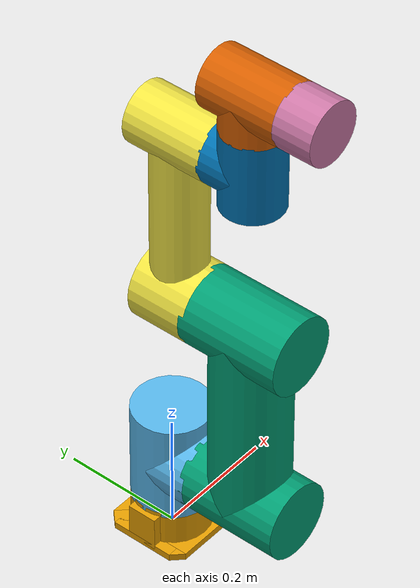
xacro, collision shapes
<?xml version="1.0"?>
<robot xmlns:xacro="http://www.ros.org/wiki/xacro" name="tm7sx">

  <xacro:arg name="ns" default="" />
  <xacro:arg name="prefix" default="" />
  <xacro:arg name="trans_hw_iface" default="hardware_interface/PositionJointInterface" />

  <xacro:include filename="$(find tm_description)/xacro/macro.gazebo.xacro" />
  <xacro:include filename="$(find tm_description)/xacro/macro.transmission.xacro" />

  <!-- tm7sx -->
  <!-- If the user want to use newly generated named robot description file as user_defined.urdf.xacro, -->
  <!-- you must modify 'macro.tm7sx-nominal.urdf.xacro' to 'user_defined.urdf.xacro'  -->
  <xacro:include filename="$(find tm_description)/xacro/macro.tm7sx-nominal.urdf.xacro" />

  <xacro:tmr_gazebo ns="$(arg ns)" prefix="$(arg prefix)" />
  <xacro:tmr_transmission prefix="$(arg prefix)" hw_iface="$(arg trans_hw_iface)" />

  <!-- Arm -->
  <xacro:tm7sx ns="$(arg ns)" prefix="$(arg prefix)"/>

</robot>

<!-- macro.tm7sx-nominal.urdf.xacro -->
<robot xmlns:xacro="http://www.ros.org/wiki/xacro">

  <xacro:include filename="$(find tm_description)/xacro/macro.inertial.xacro" />

  <xacro:macro name="tm7sx" params="ns prefix
    joint_1_lower_limit:=${radians(-360)}    joint_1_upper_limit:=${radians(360)}
    joint_2_lower_limit:=${radians(-360)}    joint_2_upper_limit:=${radians(360)}
    joint_3_lower_limit:=${radians(-152)}    joint_3_upper_limit:=${radians(152)}
    joint_4_lower_limit:=${radians(-360)}    joint_4_upper_limit:=${radians(360)}
    joint_5_lower_limit:=${radians(-360)}    joint_5_upper_limit:=${radians(360)}
    joint_6_lower_limit:=${radians(-360)}    joint_6_upper_limit:=${radians(360)}
    joint_1_velocity_limit:=${radians(210)}
    joint_2_velocity_limit:=${radians(210)}
    joint_3_velocity_limit:=${radians(210)}
    joint_4_velocity_limit:=${radians(225)}
    joint_5_velocity_limit:=${radians(225)}
    joint_6_velocity_limit:=${radians(450)}
    joint_1_effort_limit:=${157}
    joint_2_effort_limit:=${157}
    joint_3_effort_limit:=${157}
    joint_4_effort_limit:=${54}
    joint_5_effort_limit:=${54}
    joint_6_effort_limit:=${34}
    safety_limits:=false safety_pos_margin:=0.15
    safety_k_position:=20">

    <xacro:property name="damping_factor" value="0.000"/>
    <xacro:property name="d1" value="${damping_factor*0.1}"/>
    <xacro:property name="d2" value="${damping_factor*0.1}"/>
    <xacro:property name="d3" value="${damping_factor*0.1}"/>
    <xacro:property name="d4" value="${damping_factor*0.1}"/>
    <xacro:property name="d5" value="${damping_factor*0.1}"/>
    <xacro:property name="d6" value="${damping_factor*0.1}"/>

    <xacro:property name="friction_factor" value="0.000"/>
    <xacro:property name="f1" value="${friction_factor*0.1}"/>
    <xacro:property name="f2" value="${friction_factor*0.1}"/>
    <xacro:property name="f3" value="${friction_factor*0.1}"/>
    <xacro:property name="f4" value="${friction_factor*0.1}"/>
    <xacro:property name="f5" value="${friction_factor*0.1}"/>
    <xacro:property name="f6" value="${friction_factor*0.1}"/>

    <!-- Inertia parameters -->
    <xacro:property name="mass_0" value="1.0" />
    <xacro:property name="mass_1" value="4.320" />
    <xacro:property name="mass_2" value="9.456" />
    <xacro:property name="mass_3" value="2.618" />
    <xacro:property name="mass_4" value="1.770" />
    <xacro:property name="mass_5" value="1.770" />
    <xacro:property name="mass_6" value="0.340" />

    <xacro:property name="unit_factor" value="0.000001"/>
    <xacro:property name="ixx_1" value="${8439.2993*unit_factor}" />
    <xacro:property name="ixx_2" value="${28756.423*unit_factor}" />
    <xacro:property name="ixx_3" value="${4027.8840*unit_factor}" />
    <xacro:property name="ixx_4" value="${2046.0318*unit_factor}" />
    <xacro:property name="ixx_5" value="${2046.0318*unit_factor}" />
    <xacro:property name="ixx_6" value="${250.85804*unit_factor}" />

    <xacro:property name="iyy_1" value="${13793.964*unit_factor}" />
    <xacro:property name="iyy_2" value="${240700.11*unit_factor}" />
    <xacro:property name="iyy_3" value="${35507.262*unit_factor}" />
    <xacro:property name="iyy_4" value="${3171.8293*unit_factor}" />
    <xacro:property name="iyy_5" value="${3171.8293*unit_factor}" />
    <xacro:property name="iyy_6" value="${252.81701*unit_factor}" />

    <xacro:property name="izz_1" value="${14241.226*unit_factor}" />
    <xacro:property name="izz_2" value="${252296.10*unit_factor}" />
    <xacro:property name="izz_3" value="${36908.834*unit_factor}" />
    <xacro:property name="izz_4" value="${3478.9518*unit_factor}" />
    <xacro:property name="izz_5" value="${3478.9518*unit_factor}" />
    <xacro:property name="izz_6" value="${312.21304*unit_factor}" />

<!--LinkDescription-->
  <link name="${prefix}link_0">
    <visual>
      <geometry>
        <mesh filename="package://tm_description/meshes/tm7s/visual/tm7s-base.obj" />
      </geometry>
    </visual>
    <collision>
      <geometry>
        <cylinder radius="0.0635" length="0.072"/>
      </geometry>
      <origin rpy="0 0 0" xyz="0 0 0.036" />
    </collision>
    <collision>
      <geometry>
        <box size="0.02 0.05 0.065"/>
      </geometry>
      <origin rpy="0 0 0" xyz="-0.0615 0 0.0325" />
    </collision>
    <collision>
      <geometry>
        <box size="0.177 0.025 0.012"/>
      </geometry>
      <origin rpy="0 0 ${radians(45)}" xyz="0 0 0.006" />
    </collision>
    <collision>
      <geometry>
        <box size="0.177 0.025 0.012"/>
      </geometry>
      <origin rpy="0 0 ${radians(-45)}" xyz="0 0 0.006" />
    </collision>
    <collision>
      <geometry>
        <box size="0.143 0.1075 0.012"/>
      </geometry>
      <origin rpy="0 0 0" xyz="0 0 0.006" />
    </collision>
    <collision>
      <geometry>
        <box size="0.1075 0.143 0.012"/>
      </geometry>
      <origin rpy="0 0 0" xyz="0 0 0.006" />
    </collision>
<!--inertial-->
    <xacro:cylinder_inertial_z radius="0.06" length="0.05" mass="${mass_0}">
      <origin rpy="0.000000 0.000000 0.000000" xyz="0.000000 0.000000 0.000000" />
    </xacro:cylinder_inertial_z>
  </link>
  <joint name="${prefix}joint_1" type="revolute">
    <parent link="${prefix}link_0" />
    <child link="${prefix}link_1" />
    <origin rpy="0.000000 -0.000000 0.000000" xyz="0.000000 0.000000 0.148400" />
    <axis xyz="0 0 1" />
<!--limit-->
    <limit lower="${joint_1_lower_limit}" upper="${joint_1_upper_limit}" velocity="${joint_1_velocity_limit}" effort="${joint_1_effort_limit}" />
    <xacro:if value="${safety_limits}">
      <safety_controller soft_lower_limit="${joint_1_lower_limit + safety_pos_margin}" soft_upper_limit="${joint_1_upper_limit - safety_pos_margin}" k_position="${safety_k_position}" k_velocity="0.0" />
    </xacro:if>
    <dynamics damping="${d1}" friction="${f1}" />
  </joint>
  <link name="${prefix}link_1">
    <visual>
      <geometry>
        <mesh filename="package://tm_description/meshes/tm7s/visual/tm7s-j1.obj" />
      </geometry>
    </visual>
    <collision>
      <geometry>
        <cylinder radius="0.0635" length="0.17475"/>
      </geometry>
      <origin rpy="0 0 0" xyz="0 0 0.00275" />
    </collision>
    <collision>
      <geometry>
        <cylinder radius="0.0635" length="0.07"/>
      </geometry>
      <origin rpy="${radians(90)} 0 0" xyz="0 -0.037 0" />
    </collision>
    <inertial>
      <origin rpy="0.000000 0.000000 0.000000" xyz="0.000000 0.000000 0.000000" />
      <mass value="${mass_1}" />
      <inertia ixx="${ixx_1}" ixy="0.000000" ixz="0.000000" iyy="${iyy_1}" iyz="0.000000" izz="${izz_1}" />
    </inertial>
  </link>
  <joint name="${prefix}joint_2" type="revolute">
    <parent link="${prefix}link_1" />
    <child link="${prefix}link_2" />
    <origin rpy="-1.570796 -1.570796 0.000000" xyz="0.000000 0.000000 0.000000" />
    <axis xyz="0 0 1" />
<!--limit-->
    <limit lower="${joint_2_lower_limit}" upper="${joint_2_upper_limit}" velocity="${joint_2_velocity_limit}" effort="${joint_2_effort_limit}" />
    <xacro:if value="${safety_limits}">
      <safety_controller soft_lower_limit="${joint_2_lower_limit + safety_pos_margin}" soft_upper_limit="${joint_2_upper_limit - safety_pos_margin}" k_position="${safety_k_position}" k_velocity="0.0" />
    </xacro:if>
    <dynamics damping="${d2}" friction="${f2}" />
  </joint>
  <link name="${prefix}link_2">
    <visual>
      <geometry>
        <mesh filename="package://tm_description/meshes/tm7s/visual/tm7s-a1.obj" />
      </geometry>
    </visual>
    <collision>
      <geometry>
        <cylinder radius="0.0635" length="0.17475"/>
      </geometry>
      <origin rpy="0 0 0" xyz="0 0 -0.15175" />
    </collision>
    <collision>
      <geometry>
        <cylinder radius="0.0635" length="0.329"/>
      </geometry>
      <origin rpy="0 ${radians(90)} 0" xyz="${0.329/2} 0 -0.15" />
    </collision>
    <collision>
      <geometry>
        <cylinder radius="0.0635" length="0.17475"/>
      </geometry>
      <origin rpy="0 0 0" xyz="0.329 0 -0.15175" />
    </collision>
    <inertial>
      <origin rpy="0.000000 0.000000 0.000000" xyz="0.000000 0.000000 0.000000" />
      <mass value="${mass_2}" />
      <inertia ixx="${ixx_2}" ixy="0.000000" ixz="0.000000" iyy="${iyy_2}" iyz="0.000000" izz="${izz_2}" />
    </inertial>
  </link>
  <joint name="${prefix}joint_3" type="revolute">
    <parent link="${prefix}link_2" />
    <child link="${prefix}link_3" />
    <origin rpy="0.000000 -0.000000 0.000000" xyz="0.329000 0.000000 0.000000" />
    <axis xyz="0 0 1" />
<!--limit-->
    <limit lower="${joint_3_lower_limit}" upper="${joint_3_upper_limit}" velocity="${joint_3_velocity_limit}" effort="${joint_3_effort_limit}" />
    <xacro:if value="${safety_limits}">
      <safety_controller soft_lower_limit="${joint_3_lower_limit + safety_pos_margin}" soft_upper_limit="${joint_3_upper_limit - safety_pos_margin}" k_position="${safety_k_position}" k_velocity="0.0" />
    </xacro:if>
    <dynamics damping="${d3}" friction="${f3}" />
  </joint>
  <link name="${prefix}link_3">
    <visual>
      <geometry>
        <mesh filename="package://tm_description/meshes/tm7s/visual/tm7s-a2.obj" />
      </geometry>
    </visual>
    <collision>
      <geometry>
        <cylinder radius="0.0635" length="0.101"/>
      </geometry>
      <origin rpy="0 0 0" xyz="0 0 -0.022" />
    </collision>
    <collision>
      <geometry>
        <cylinder radius="0.044" length="0.298"/>
      </geometry>
      <origin rpy="0 ${radians(90)} 0" xyz="${0.298/2} 0 -0.01625" />
    </collision>
    <collision>
      <geometry>
        <cylinder radius="0.05" length="0.136"/>
      </geometry>
      <origin rpy="0 0 0" xyz="0.298 0 -0.022" />
    </collision>
    <inertial>
      <origin rpy="0.000000 0.000000 0.000000" xyz="0.000000 0.000000 0.000000" />
      <mass value="${mass_3}" />
      <inertia ixx="${ixx_3}" ixy="0.000000" ixz="0.000000" iyy="${iyy_3}" iyz="0.000000" izz="${izz_3}" />
    </inertial>
  </link>
  <joint name="${prefix}joint_4" type="revolute">
    <parent link="${prefix}link_3" />
    <child link="${prefix}link_4" />
    <origin rpy="0.000000 -0.000000 1.570796" xyz="0.298000 0.000000 -0.147800" />
    <axis xyz="0 0 1" />
<!--limit-->
    <limit lower="${joint_4_lower_limit}" upper="${joint_4_upper_limit}" velocity="${joint_4_velocity_limit}" effort="${joint_4_effort_limit}" />
    <xacro:if value="${safety_limits}">
      <safety_controller soft_lower_limit="${joint_4_lower_limit + safety_pos_margin}" soft_upper_limit="${joint_4_upper_limit - safety_pos_margin}" k_position="${safety_k_position}" k_velocity="0.0" />
    </xacro:if>
    <dynamics damping="${d4}" friction="${f4}" />
  </joint>
  <link name="${prefix}link_4">
    <visual>
      <geometry>
        <mesh filename="package://tm_description/meshes/tm7s/visual/tm7s-j5.obj" />
      </geometry>
    </visual>
    <collision>
      <geometry>
        <cylinder radius="0.05" length="0.06"/>
      </geometry>
      <origin rpy="0 0 0" xyz="0 0 0.031" />
    </collision>
    <collision>
      <geometry>
        <cylinder radius="0.05" length="0.135"/>
      </geometry>
      <origin rpy="${radians(90)} 0 0" xyz="0 -0.0055 0" />
    </collision>
    <inertial>
      <origin rpy="0.000000 0.000000 0.000000" xyz="0.000000 0.000000 0.000000" />
      <mass value="${mass_4}" />
      <inertia ixx="${ixx_4}" ixy="0.000000" ixz="0.000000" iyy="${iyy_4}" iyz="0.000000" izz="${izz_4}" />
    </inertial>
  </link>
  <joint name="${prefix}joint_5" type="revolute">
    <parent link="${prefix}link_4" />
    <child link="${prefix}link_5" />
    <origin rpy="1.570796 -0.000000 0.000000" xyz="0.000000 -0.131500 0.000000" />
    <axis xyz="0 0 1" />
<!--limit-->
    <limit lower="${joint_5_lower_limit}" upper="${joint_5_upper_limit}" velocity="${joint_5_velocity_limit}" effort="${joint_5_effort_limit}" />
    <xacro:if value="${safety_limits}">
      <safety_controller soft_lower_limit="${joint_5_lower_limit + safety_pos_margin}" soft_upper_limit="${joint_5_upper_limit - safety_pos_margin}" k_position="${safety_k_position}" k_velocity="0.0" />
    </xacro:if>
    <dynamics damping="${d5}" friction="${f5}" />
  </joint>
  <link name="${prefix}link_5">
    <visual>
      <geometry>
        <mesh filename="package://tm_description/meshes/tm7s/visual/tm7s-j6.obj" />
      </geometry>
    </visual>
    <collision>
      <geometry>
        <cylinder radius="0.05" length="0.06"/>
      </geometry>
      <origin rpy="0 0 0" xyz="0 0 -0.031" />
    </collision>
    <collision>
      <geometry>
        <cylinder radius="0.05" length="0.135"/>
      </geometry>
      <origin rpy="${radians(90)} 0 0" xyz="0 -0.0055 0" />
    </collision>
    <inertial>
      <origin rpy="0.000000 0.000000 0.000000" xyz="0.000000 0.000000 0.000000" />
      <mass value="${mass_5}" />
      <inertia ixx="${ixx_5}" ixy="0.000000" ixz="0.000000" iyy="${iyy_5}" iyz="0.000000" izz="${izz_5}" />
    </inertial>
  </link>
  <joint name="${prefix}joint_6" type="revolute">
    <parent link="${prefix}link_5" />
    <child link="${prefix}link_6" />
    <origin rpy="1.570796 -0.000000 0.000000" xyz="0.000000 -0.134950 0.000000" />
    <axis xyz="0 0 1" />
<!--limit-->
    <limit lower="${joint_6_lower_limit}" upper="${joint_6_upper_limit}" velocity="${joint_6_velocity_limit}" effort="${joint_6_effort_limit}" />
    <xacro:if value="${safety_limits}">
      <safety_controller soft_lower_limit="${joint_6_lower_limit + safety_pos_margin}" soft_upper_limit="${joint_6_upper_limit - safety_pos_margin}" k_position="${safety_k_position}" k_velocity="0.0" />
    </xacro:if>
    <dynamics damping="${d6}" friction="${f6}" />
  </joint>
  <link name="${prefix}link_6">
    <visual>
      <geometry>
        <mesh filename="package://tm_description/meshes/tm5s/visual/tm5s-iox.obj" />
      </geometry>
    </visual>
    <collision>
      <geometry>
        <cylinder radius="0.05" length="0.065"/>
      </geometry>
      <origin rpy="0 0 0" xyz="0 0 -0.032" />
    </collision>
    <inertial>
      <origin rpy="0.000000 0.000000 0.000000" xyz="0.000000 0.000000 0.000000" />
      <mass value="${mass_6}" />
      <inertia ixx="${ixx_6}" ixy="0.000000" ixz="0.000000" iyy="${iyy_6}" iyz="0.000000" izz="${izz_6}" />
    </inertial>
  </link>
  <link name="${prefix}base" />
  <joint name="${prefix}base_fixed_joint" type="fixed">
    <parent link="${prefix}base" />
    <child link="${prefix}link_0" />
    <origin rpy="0.000000 0.000000 0.000000" xyz="0.000000 0.000000 0.000000" />
  </joint>
  <link name="${prefix}flange" />
  <joint name="${prefix}flange_fixed_joint" type="fixed">
    <parent link="${prefix}link_6" />
    <child link="${prefix}flange" />
    <origin rpy="0.000000 0.000000 0.000000" xyz="0.000000 0.000000 0.000000" />
  </joint>
<!--LinkDescription-->

  </xacro:macro>

</robot>
